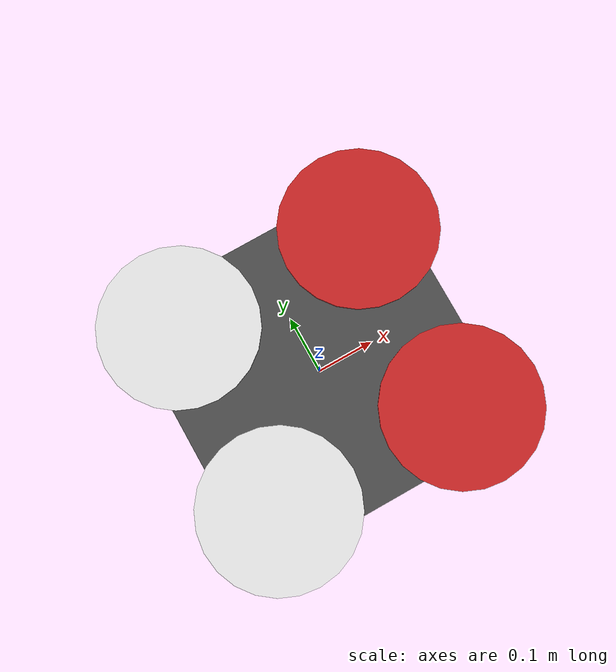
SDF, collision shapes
<sdf version='1.6'>
  <model name='iris'>
    <link name='base_link'>
      <pose frame=''>0 0 0 0 -0 0</pose>
      <inertial>
        <pose frame=''>1e-06 0 3e-06 0 -0 0</pose>
        <mass>1.50003</mass>
        <inertia>
          <ixx>0.0347599</ixx>
          <ixy>3.50431e-10</ixy>
          <ixz>-1.94036e-07</ixz>
          <iyy>0.0458965</iyy>
          <iyz>-5.29189e-08</iyz>
          <izz>0.0977032</izz>
        </inertia>
      </inertial>
      <collision name='base_link_inertia_collision'>
        <pose frame=''>0 0 0 0 -0 0</pose>
        <geometry>
          <box>
            <size>0.47 0.47 0.11</size>
          </box>
        </geometry>
        <surface>
          <contact>
            <ode>
              <min_depth>0.001</min_depth>
              <max_vel>0</max_vel>
            </ode>
          </contact>
          <friction>
            <ode/>
          </friction>
        </surface>
      </collision>
      <visual name='base_link_inertia_visual'>
        <pose frame=''>0 0 0 0 -0 0</pose>
        <geometry>
          <mesh>
            <scale>1 1 1</scale>
            <uri>model://rotors_description/meshes/safecopter.stl</uri>
          </mesh>
        </geometry>
        <material>
          <script>
            <name>Gazebo/DarkGrey</name>
            <uri>file://media/materials/scripts/gazebo.material</uri>
          </script>
        </material>
      </visual>
      <visual name='base_link_fixed_joint_lump__pf_FF_link_visual_1'>
        <pose frame=''>0.077 0.021 0.126 0 -0 0</pose>
        <geometry>
          <box>
            <size>0.007 0.05 0.017</size>
          </box>
        </geometry>
        <material>
          <script>
            <name>Gazebo/Red</name>
            <uri>file://media/materials/scripts/gazebo.material</uri>
          </script>
        </material>
      </visual>
      <visual name='base_link_fixed_joint_lump__pf_FL_link_visual_2'>
        <pose frame=''>0.02 0.077 0.126 0 -0 1.0472</pose>
        <geometry>
          <box>
            <size>0.007 0.05 0.017</size>
          </box>
        </geometry>
        <material>
          <script>
            <name>Gazebo/Red</name>
            <uri>file://media/materials/scripts/gazebo.material</uri>
          </script>
        </material>
      </visual>
      <visual name='base_link_fixed_joint_lump__pf_FR_link_visual_3'>
        <pose frame=''>0.057 -0.056 0.126 0 0 -1.0472</pose>
        <geometry>
          <box>
            <size>0.007 0.05 0.017</size>
          </box>
        </geometry>
        <material>
          <script>
            <name>Gazebo/Red</name>
            <uri>file://media/materials/scripts/gazebo.material</uri>
          </script>
        </material>
      </visual>
      <velocity_decay/>
      <velocity_decay/>
      <velocity_decay/>
      <sensor name='pf_FF_dephcam' type='depth'>
        <update_rate>5</update_rate>
        <camera name='pf_FF_dcam'>
          <horizontal_fov>1.39626</horizontal_fov>
          <image>
            <width>640</width>
            <height>480</height>
            <format>R8G8B8</format>
          </image>
          <depth_camera>
            <output>depths</output>
          </depth_camera>
          <clip>
            <near>0.02</near>
            <far>300</far>
          </clip>
          <noise>
            <type>gaussian</type>
            <mean>0</mean>
            <stddev>0.007</stddev>
          </noise>
        </camera>
        <plugin name='pf_FF_controller' filename='libgazebo_ros_openni_kinect.so'>
          <topicName>/kinect_sim/kinect</topicName>
          <baseline>0.2</baseline>
          <alwaysOn>true</alwaysOn>
          <updateRate/>
          <cameraName>pf_FF_dephcam</cameraName>
          <imageTopicName>rgb/image_raw</imageTopicName>
          <cameraInfoTopicName>rgb/camera_info</cameraInfoTopicName>
          <depthImageCameraInfoTopicName>depth/camera_info</depthImageCameraInfoTopicName>
          <pointCloudCutoffMax>5</pointCloudCutoffMax>
          <depthImageTopicName>depth/image_raw</depthImageTopicName>
          <depthImageInfoTopicName>depth/camera_info</depthImageInfoTopicName>
          <pointCloudTopicName>points</pointCloudTopicName>
          <frameName>pf_FF_link_optical</frameName>
          <pointCloudCutoff>0.5</pointCloudCutoff>
          <distortionK1>0.00000001</distortionK1>
          <distortionK2>0.00000001</distortionK2>
          <distortionK3>0.00000001</distortionK3>
          <distortionT1>0.00000001</distortionT1>
          <distortionT2>0.00000001</distortionT2>
          <CxPrime>0</CxPrime>
          <Cx>0</Cx>
          <Cy>0</Cy>
          <focalLength>0</focalLength>
          <hackBaseline>0</hackBaseline>
        </plugin>
        <pose frame=''>0.077 0.021 0.126 0 -0 0</pose>
      </sensor>
      <velocity_decay/>
      <velocity_decay/>
      <sensor name='pf_FL_dephcam' type='depth'>
        <update_rate>5</update_rate>
        <camera name='pf_FL_dcam'>
          <horizontal_fov>1.39626</horizontal_fov>
          <image>
            <width>640</width>
            <height>480</height>
            <format>R8G8B8</format>
          </image>
          <depth_camera>
            <output>depths</output>
          </depth_camera>
          <clip>
            <near>0.02</near>
            <far>300</far>
          </clip>
          <noise>
            <type>gaussian</type>
            <mean>0</mean>
            <stddev>0.007</stddev>
          </noise>
        </camera>
        <plugin name='pf_FL_controller' filename='libgazebo_ros_openni_kinect.so'>
          <topicName>/kinect_sim/kinect</topicName>
          <baseline>0.2</baseline>
          <alwaysOn>true</alwaysOn>
          <updateRate/>
          <cameraName>pf_FL_dephcam</cameraName>
          <imageTopicName>rgb/image_raw</imageTopicName>
          <cameraInfoTopicName>rgb/camera_info</cameraInfoTopicName>
          <depthImageCameraInfoTopicName>depth/camera_info</depthImageCameraInfoTopicName>
          <pointCloudCutoffMax>5</pointCloudCutoffMax>
          <depthImageTopicName>depth/image_raw</depthImageTopicName>
          <depthImageInfoTopicName>depth/camera_info</depthImageInfoTopicName>
          <pointCloudTopicName>points</pointCloudTopicName>
          <frameName>pf_FL_link_optical</frameName>
          <pointCloudCutoff>0.5</pointCloudCutoff>
          <distortionK1>0.00000001</distortionK1>
          <distortionK2>0.00000001</distortionK2>
          <distortionK3>0.00000001</distortionK3>
          <distortionT1>0.00000001</distortionT1>
          <distortionT2>0.00000001</distortionT2>
          <CxPrime>0</CxPrime>
          <Cx>0</Cx>
          <Cy>0</Cy>
          <focalLength>0</focalLength>
          <hackBaseline>0</hackBaseline>
        </plugin>
        <pose frame=''>0.02 0.077 0.126 0 -0 1.0472</pose>
      </sensor>
      <velocity_decay/>
      <gravity>1</gravity>
      <velocity_decay/>
      <self_collide>0</self_collide>
      <sensor name='pf_FR_dephcam' type='depth'>
        <update_rate>5</update_rate>
        <camera name='pf_FR_dcam'>
          <horizontal_fov>1.39626</horizontal_fov>
          <image>
            <width>640</width>
            <height>480</height>
            <format>R8G8B8</format>
          </image>
          <depth_camera>
            <output>depths</output>
          </depth_camera>
          <clip>
            <near>0.02</near>
            <far>300</far>
          </clip>
          <noise>
            <type>gaussian</type>
            <mean>0</mean>
            <stddev>0.007</stddev>
          </noise>
        </camera>
        <plugin name='pf_FR_controller' filename='libgazebo_ros_openni_kinect.so'>
          <topicName>/kinect_sim/kinect</topicName>
          <baseline>0.2</baseline>
          <alwaysOn>true</alwaysOn>
          <updateRate/>
          <cameraName>pf_FR_dephcam</cameraName>
          <imageTopicName>rgb/image_raw</imageTopicName>
          <cameraInfoTopicName>rgb/camera_info</cameraInfoTopicName>
          <depthImageCameraInfoTopicName>depth/camera_info</depthImageCameraInfoTopicName>
          <pointCloudCutoffMax>5</pointCloudCutoffMax>
          <depthImageTopicName>depth/image_raw</depthImageTopicName>
          <depthImageInfoTopicName>depth/camera_info</depthImageInfoTopicName>
          <pointCloudTopicName>points</pointCloudTopicName>
          <frameName>pf_FR_link_optical</frameName>
          <pointCloudCutoff>0.5</pointCloudCutoff>
          <distortionK1>0.00000001</distortionK1>
          <distortionK2>0.00000001</distortionK2>
          <distortionK3>0.00000001</distortionK3>
          <distortionT1>0.00000001</distortionT1>
          <distortionT2>0.00000001</distortionT2>
          <CxPrime>0</CxPrime>
          <Cx>0</Cx>
          <Cy>0</Cy>
          <focalLength>0</focalLength>
          <hackBaseline>0</hackBaseline>
        </plugin>
        <pose frame=''>0.057 -0.056 0.126 0 0 -1.0472</pose>
      </sensor>
    </link>
    <link name='/imu_link'>
      <pose frame=''>0 0 0 0 -0 0</pose>
      <inertial>
        <pose frame=''>0 0 0 0 -0 0</pose>
        <mass>0.015</mass>
        <inertia>
          <ixx>1e-05</ixx>
          <ixy>0</ixy>
          <ixz>0</ixz>
          <iyy>1e-05</iyy>
          <iyz>0</iyz>
          <izz>1e-05</izz>
        </inertia>
      </inertial>
    </link>
    <joint name='/imu_joint' type='revolute'>
      <child>/imu_link</child>
      <parent>base_link</parent>
      <axis>
        <xyz>1 0 0</xyz>
        <limit>
          <lower>0</lower>
          <upper>0</upper>
          <effort>0</effort>
          <velocity>0</velocity>
        </limit>
        <dynamics>
          <spring_reference>0</spring_reference>
          <spring_stiffness>0</spring_stiffness>
        </dynamics>
        <use_parent_model_frame>1</use_parent_model_frame>
      </axis>
    </joint>
    <link name='rotor_0'>
      <pose frame=''>0.159 -0.159 0.09 0 -0 0</pose>
      <inertial>
        <pose frame=''>0 0 0 0 -0 0</pose>
        <mass>0.005</mass>
        <inertia>
          <ixx>9.75e-07</ixx>
          <ixy>0</ixy>
          <ixz>0</ixz>
          <iyy>0.000273104</iyy>
          <iyz>0</iyz>
          <izz>0.000274004</izz>
        </inertia>
      </inertial>
      <collision name='rotor_0_collision'>
        <pose frame=''>0 0 0 0 -0 0</pose>
        <geometry>
          <cylinder>
            <length>0.005</length>
            <radius>0.128</radius>
          </cylinder>
        </geometry>
        <surface>
          <contact>
            <ode/>
          </contact>
          <friction>
            <ode/>
          </friction>
        </surface>
      </collision>
      <visual name='rotor_0_visual'>
        <pose frame=''>0 0 0 0 -0 0</pose>
        <geometry>
          <mesh>
            <scale>1 1 1</scale>
            <uri>model://rotors_description/meshes/iris_prop_ccw.dae</uri>
          </mesh>
        </geometry>
        <material>
          <script>
            <name>Gazebo/Red</name>
            <uri>file://media/materials/scripts/gazebo.material</uri>
          </script>
        </material>
      </visual>
      <gravity>1</gravity>
      <velocity_decay/>
      <self_collide>0</self_collide>
    </link>
    <joint name='rotor_0_joint' type='revolute'>
      <child>rotor_0</child>
      <parent>base_link</parent>
      <axis>
        <xyz>0 0 1</xyz>
        <limit>
          <lower>-1e+16</lower>
          <upper>1e+16</upper>
        </limit>
        <dynamics>
          <spring_reference>0</spring_reference>
          <spring_stiffness>0</spring_stiffness>
        </dynamics>
        <use_parent_model_frame>1</use_parent_model_frame>
      </axis>
    </joint>
    <link name='rotor_1'>
      <pose frame=''>-0.159 0.159 0.09 0 -0 0</pose>
      <inertial>
        <pose frame=''>0 0 0 0 -0 0</pose>
        <mass>0.005</mass>
        <inertia>
          <ixx>9.75e-07</ixx>
          <ixy>0</ixy>
          <ixz>0</ixz>
          <iyy>0.000273104</iyy>
          <iyz>0</iyz>
          <izz>0.000274004</izz>
        </inertia>
      </inertial>
      <collision name='rotor_1_collision'>
        <pose frame=''>0 0 0 0 -0 0</pose>
        <geometry>
          <cylinder>
            <length>0.005</length>
            <radius>0.128</radius>
          </cylinder>
        </geometry>
        <surface>
          <contact>
            <ode/>
          </contact>
          <friction>
            <ode/>
          </friction>
        </surface>
      </collision>
      <visual name='rotor_1_visual'>
        <pose frame=''>0 0 0 0 -0 0</pose>
        <geometry>
          <mesh>
            <scale>1 1 1</scale>
            <uri>model://rotors_description/meshes/iris_prop_ccw.dae</uri>
          </mesh>
        </geometry>
        <material>
          <script>
            <name>Gazebo/White</name>
            <uri>file://media/materials/scripts/gazebo.material</uri>
          </script>
        </material>
      </visual>
      <gravity>1</gravity>
      <velocity_decay/>
      <self_collide>0</self_collide>
    </link>
    <joint name='rotor_1_joint' type='revolute'>
      <child>rotor_1</child>
      <parent>base_link</parent>
      <axis>
        <xyz>0 0 1</xyz>
        <limit>
          <lower>-1e+16</lower>
          <upper>1e+16</upper>
        </limit>
        <dynamics>
          <spring_reference>0</spring_reference>
          <spring_stiffness>0</spring_stiffness>
        </dynamics>
        <use_parent_model_frame>1</use_parent_model_frame>
      </axis>
    </joint>
    <link name='rotor_2'>
      <pose frame=''>0.159 0.159 0.09 0 -0 0</pose>
      <inertial>
        <pose frame=''>0 0 0 0 -0 0</pose>
        <mass>0.005</mass>
        <inertia>
          <ixx>9.75e-07</ixx>
          <ixy>0</ixy>
          <ixz>0</ixz>
          <iyy>0.000273104</iyy>
          <iyz>0</iyz>
          <izz>0.000274004</izz>
        </inertia>
      </inertial>
      <collision name='rotor_2_collision'>
        <pose frame=''>0 0 0 0 -0 0</pose>
        <geometry>
          <cylinder>
            <length>0.005</length>
            <radius>0.128</radius>
          </cylinder>
        </geometry>
        <surface>
          <contact>
            <ode/>
          </contact>
          <friction>
            <ode/>
          </friction>
        </surface>
      </collision>
      <visual name='rotor_2_visual'>
        <pose frame=''>0 0 0 0 -0 0</pose>
        <geometry>
          <mesh>
            <scale>1 1 1</scale>
            <uri>model://rotors_description/meshes/iris_prop_cw.dae</uri>
          </mesh>
        </geometry>
        <material>
          <script>
            <name>Gazebo/Red</name>
            <uri>file://media/materials/scripts/gazebo.material</uri>
          </script>
        </material>
      </visual>
      <gravity>1</gravity>
      <velocity_decay/>
      <self_collide>0</self_collide>
    </link>
    <joint name='rotor_2_joint' type='revolute'>
      <child>rotor_2</child>
      <parent>base_link</parent>
      <axis>
        <xyz>0 0 1</xyz>
        <limit>
          <lower>-1e+16</lower>
          <upper>1e+16</upper>
        </limit>
        <dynamics>
          <spring_reference>0</spring_reference>
          <spring_stiffness>0</spring_stiffness>
        </dynamics>
        <use_parent_model_frame>1</use_parent_model_frame>
      </axis>
    </joint>
    <link name='rotor_3'>
      <pose frame=''>-0.159 -0.159 0.09 0 -0 0</pose>
      <inertial>
        <pose frame=''>0 0 0 0 -0 0</pose>
        <mass>0.005</mass>
        <inertia>
          <ixx>9.75e-07</ixx>
          <ixy>0</ixy>
          <ixz>0</ixz>
          <iyy>0.000273104</iyy>
          <iyz>0</iyz>
          <izz>0.000274004</izz>
        </inertia>
      </inertial>
      <collision name='rotor_3_collision'>
        <pose frame=''>0 0 0 0 -0 0</pose>
        <geometry>
          <cylinder>
            <length>0.005</length>
            <radius>0.128</radius>
          </cylinder>
        </geometry>
        <surface>
          <contact>
            <ode/>
          </contact>
          <friction>
            <ode/>
          </friction>
        </surface>
      </collision>
      <visual name='rotor_3_visual'>
        <pose frame=''>0 0 0 0 -0 0</pose>
        <geometry>
          <mesh>
            <scale>1 1 1</scale>
            <uri>model://rotors_description/meshes/iris_prop_cw.dae</uri>
          </mesh>
        </geometry>
        <material>
          <script>
            <name>Gazebo/White</name>
            <uri>file://media/materials/scripts/gazebo.material</uri>
          </script>
        </material>
      </visual>
      <gravity>1</gravity>
      <velocity_decay/>
      <self_collide>0</self_collide>
    </link>
    <joint name='rotor_3_joint' type='revolute'>
      <child>rotor_3</child>
      <parent>base_link</parent>
      <axis>
        <xyz>0 0 1</xyz>
        <limit>
          <lower>-1e+16</lower>
          <upper>1e+16</upper>
        </limit>
        <dynamics>
          <spring_reference>0</spring_reference>
          <spring_stiffness>0</spring_stiffness>
        </dynamics>
        <use_parent_model_frame>1</use_parent_model_frame>
      </axis>
    </joint>
    <plugin name='rosbag' filename='librotors_gazebo_multirotor_base_plugin.so'>
      <robotNamespace/>
      <linkName>base_link</linkName>
      <rotorVelocitySlowdownSim>10</rotorVelocitySlowdownSim>
    </plugin>
    <plugin name='front_right_motor_model' filename='librotors_gazebo_motor_model.so'>
      <robotNamespace/>
      <jointName>rotor_0_joint</jointName>
      <linkName>rotor_0</linkName>
      <turningDirection>ccw</turningDirection>
      <timeConstantUp>0.0125</timeConstantUp>
      <timeConstantDown>0.025</timeConstantDown>
      <maxRotVelocity>1100</maxRotVelocity>
      <motorConstant>8.54858e-06</motorConstant>
      <momentConstant>0.06</momentConstant>
      <commandSubTopic>/gazebo/command/motor_speed</commandSubTopic>
      <motorNumber>0</motorNumber>
      <rotorDragCoefficient>0.000806428</rotorDragCoefficient>
      <rollingMomentCoefficient>1e-06</rollingMomentCoefficient>
      <motorSpeedPubTopic>/motor_speed/0</motorSpeedPubTopic>
      <rotorVelocitySlowdownSim>10</rotorVelocitySlowdownSim>
    </plugin>
    <plugin name='back_left_motor_model' filename='librotors_gazebo_motor_model.so'>
      <robotNamespace/>
      <jointName>rotor_1_joint</jointName>
      <linkName>rotor_1</linkName>
      <turningDirection>ccw</turningDirection>
      <timeConstantUp>0.0125</timeConstantUp>
      <timeConstantDown>0.025</timeConstantDown>
      <maxRotVelocity>1100</maxRotVelocity>
      <motorConstant>8.54858e-06</motorConstant>
      <momentConstant>0.06</momentConstant>
      <commandSubTopic>/gazebo/command/motor_speed</commandSubTopic>
      <motorNumber>1</motorNumber>
      <rotorDragCoefficient>0.000806428</rotorDragCoefficient>
      <rollingMomentCoefficient>1e-06</rollingMomentCoefficient>
      <motorSpeedPubTopic>/motor_speed/1</motorSpeedPubTopic>
      <rotorVelocitySlowdownSim>10</rotorVelocitySlowdownSim>
    </plugin>
    <plugin name='front_left_motor_model' filename='librotors_gazebo_motor_model.so'>
      <robotNamespace/>
      <jointName>rotor_2_joint</jointName>
      <linkName>rotor_2</linkName>
      <turningDirection>cw</turningDirection>
      <timeConstantUp>0.0125</timeConstantUp>
      <timeConstantDown>0.025</timeConstantDown>
      <maxRotVelocity>1100</maxRotVelocity>
      <motorConstant>8.54858e-06</motorConstant>
      <momentConstant>0.06</momentConstant>
      <commandSubTopic>/gazebo/command/motor_speed</commandSubTopic>
      <motorNumber>2</motorNumber>
      <rotorDragCoefficient>0.000806428</rotorDragCoefficient>
      <rollingMomentCoefficient>1e-06</rollingMomentCoefficient>
      <motorSpeedPubTopic>/motor_speed/2</motorSpeedPubTopic>
      <rotorVelocitySlowdownSim>10</rotorVelocitySlowdownSim>
    </plugin>
    <plugin name='back_right_motor_model' filename='librotors_gazebo_motor_model.so'>
      <robotNamespace/>
      <jointName>rotor_3_joint</jointName>
      <linkName>rotor_3</linkName>
      <turningDirection>cw</turningDirection>
      <timeConstantUp>0.0125</timeConstantUp>
      <timeConstantDown>0.025</timeConstantDown>
      <maxRotVelocity>1100</maxRotVelocity>
      <motorConstant>8.54858e-06</motorConstant>
      <momentConstant>0.06</momentConstant>
      <commandSubTopic>/gazebo/command/motor_speed</commandSubTopic>
      <motorNumber>3</motorNumber>
      <rotorDragCoefficient>0.000806428</rotorDragCoefficient>
      <rollingMomentCoefficient>1e-06</rollingMomentCoefficient>
      <motorSpeedPubTopic>/motor_speed/3</motorSpeedPubTopic>
      <rotorVelocitySlowdownSim>10</rotorVelocitySlowdownSim>
    </plugin>
    <plugin name='gps_plugin' filename='libgazebo_gps_plugin.so'>
      <robotNamespace/>
      <gpsNoise>true</gpsNoise>
    </plugin>
    <plugin name='mavlink_interface' filename='librotors_gazebo_mavlink_interface.so'>
      <robotNamespace/>
      <imuSubTopic>/imu</imuSubTopic>
      <gpsSubTopic>/gps</gpsSubTopic>
      <mavlink_addr>INADDR_ANY</mavlink_addr>
      <mavlink_udp_port>14560</mavlink_udp_port>
      <serialEnabled>false</serialEnabled>
      <serialDevice>/dev/ttyACM0</serialDevice>
      <baudRate>921600</baudRate>
      <qgc_addr>INADDR_ANY</qgc_addr>
      <qgc_udp_port>14550</qgc_udp_port>
      <hil_mode>false</hil_mode>
      <hil_state_level>false</hil_state_level>
      <motorSpeedCommandPubTopic>/gazebo/command/motor_speed</motorSpeedCommandPubTopic>
      <control_channels>
        <channel name='rotor1'>
          <input_index>0</input_index>
          <input_offset>0</input_offset>
          <input_scaling>1000</input_scaling>
          <zero_position_disarmed>0</zero_position_disarmed>
          <zero_position_armed>100</zero_position_armed>
          <joint_control_type>velocity</joint_control_type>
        </channel>
        <channel name='rotor2'>
          <input_index>1</input_index>
          <input_offset>0</input_offset>
          <input_scaling>1000</input_scaling>
          <zero_position_disarmed>0</zero_position_disarmed>
          <zero_position_armed>100</zero_position_armed>
          <joint_control_type>velocity</joint_control_type>
        </channel>
        <channel name='rotor3'>
          <input_index>2</input_index>
          <input_offset>0</input_offset>
          <input_scaling>1000</input_scaling>
          <zero_position_disarmed>0</zero_position_disarmed>
          <zero_position_armed>100</zero_position_armed>
          <joint_control_type>velocity</joint_control_type>
        </channel>
        <channel name='rotor4'>
          <input_index>3</input_index>
          <input_offset>0</input_offset>
          <input_scaling>1000</input_scaling>
          <zero_position_disarmed>0</zero_position_disarmed>
          <zero_position_armed>100</zero_position_armed>
          <joint_control_type>velocity</joint_control_type>
        </channel>
        <channel name='rotor5'>
          <input_index>4</input_index>
          <input_offset>1</input_offset>
          <input_scaling>324.6</input_scaling>
          <zero_position_disarmed>0</zero_position_disarmed>
          <zero_position_armed>0</zero_position_armed>
          <joint_control_type>velocity</joint_control_type>
          <joint_control_pid>
            <p>0.1</p>
            <i>0</i>
            <d>0</d>
            <iMax>0.0</iMax>
            <iMin>0.0</iMin>
            <cmdMax>2</cmdMax>
            <cmdMin>-2</cmdMin>
          </joint_control_pid>
          <joint_name>zephyr_delta_wing::propeller_joint</joint_name>
        </channel>
        <channel name='rotor6'>
          <input_index>5</input_index>
          <input_offset>0</input_offset>
          <input_scaling>0.524</input_scaling>
          <zero_position_disarmed>0</zero_position_disarmed>
          <zero_position_armed>0</zero_position_armed>
          <joint_control_type>position</joint_control_type>
          <joint_name>zephyr_delta_wing::flap_left_joint</joint_name>
          <joint_control_pid>
            <p>10.0</p>
            <i>0</i>
            <d>0</d>
            <iMax>0</iMax>
            <iMin>0</iMin>
            <cmdMax>20</cmdMax>
            <cmdMin>-20</cmdMin>
          </joint_control_pid>
        </channel>
        <channel name='rotor7'>
          <input_index>6</input_index>
          <input_offset>0</input_offset>
          <input_scaling>0.524</input_scaling>
          <zero_position_disarmed>0</zero_position_disarmed>
          <zero_position_armed>0</zero_position_armed>
          <joint_control_type>position</joint_control_type>
          <joint_name>zephyr_delta_wing::flap_right_joint</joint_name>
          <joint_control_pid>
            <p>10.0</p>
            <i>0</i>
            <d>0</d>
            <iMax>0</iMax>
            <iMin>0</iMin>
            <cmdMax>20</cmdMax>
            <cmdMin>-20</cmdMin>
          </joint_control_pid>
        </channel>
        <channel name='rotor8'>
          <input_index>7</input_index>
          <input_offset>0</input_offset>
          <input_scaling>0.524</input_scaling>
          <zero_position_disarmed>0</zero_position_disarmed>
          <zero_position_armed>0</zero_position_armed>
          <joint_control_type>position</joint_control_type>
        </channel>
      </control_channels>
    </plugin>
    <static>0</static>
    <plugin name='rotors_gazebo_imu_plugin' filename='librotors_gazebo_imu_plugin.so'>
      <robotNamespace/>
      <linkName>/imu_link</linkName>
      <imuTopic>/imu</imuTopic>
      <gyroscopeNoiseDensity>0.0003394</gyroscopeNoiseDensity>
      <gyroscopeRandomWalk>3.8785e-05</gyroscopeRandomWalk>
      <gyroscopeBiasCorrelationTime>1000.0</gyroscopeBiasCorrelationTime>
      <gyroscopeTurnOnBiasSigma>0.0087</gyroscopeTurnOnBiasSigma>
      <accelerometerNoiseDensity>0.004</accelerometerNoiseDensity>
      <accelerometerRandomWalk>0.006</accelerometerRandomWalk>
      <accelerometerBiasCorrelationTime>300.0</accelerometerBiasCorrelationTime>
      <accelerometerTurnOnBiasSigma>0.196</accelerometerTurnOnBiasSigma>
    </plugin>
  </model>
</sdf>
